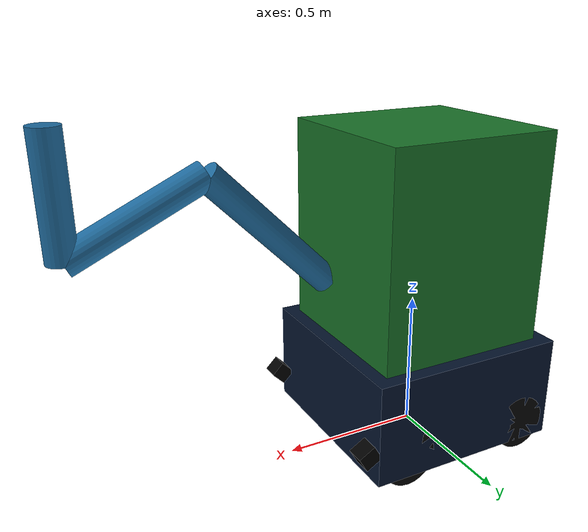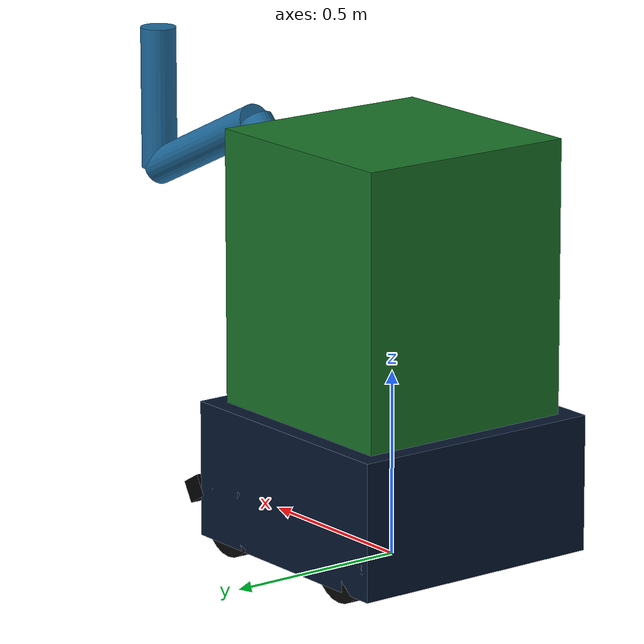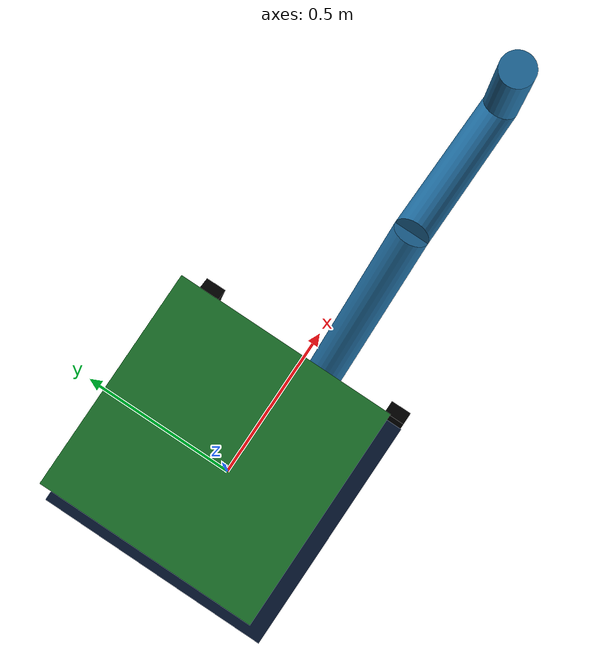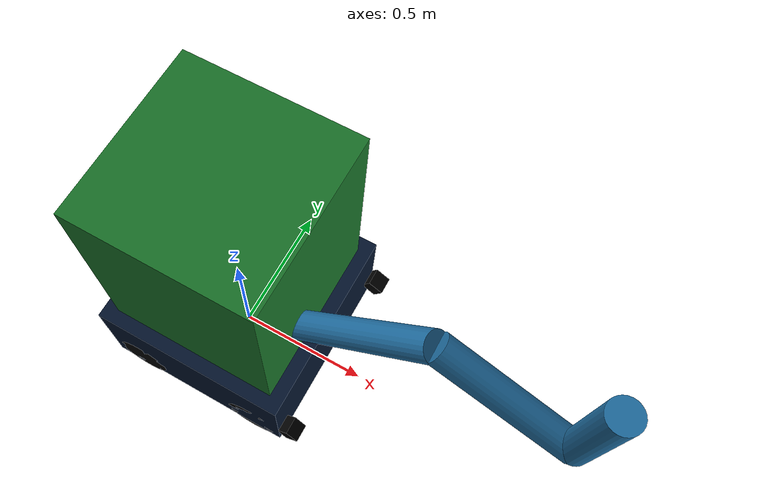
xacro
<?xml version="1.0"?>
<robot xmlns:xacro="http://www.ros.org/wiki/xacro" name="ai_ship_robot">
  <xacro:arg name="use_sim" default="true" />
  <xacro:arg name="lidar_pattern_file" default="lidar_pattern_dual_updown.urdf.xacro" />

  <xacro:property name="base_length" value="0.72" />
  <xacro:property name="base_width" value="0.72" />
  <xacro:property name="base_height" value="0.37" />
  <xacro:property name="ground_clearance" value="0.03" />
  <xacro:property name="wheel_radius" value="0.10" />
  <xacro:property name="wheel_width" value="0.08" />
  <xacro:property name="wheel_separation" value="${base_width - wheel_width}" />
  <xacro:property name="wheel_x_offset" value="${base_length / 2.0 - wheel_radius - 0.02}" />
  <xacro:property name="base_center_z" value="${ground_clearance - wheel_radius + base_height / 2.0}" />
  <xacro:property name="arm_robot_body_length" value="0.62" />
  <xacro:property name="arm_robot_body_width" value="0.62" />
  <xacro:property name="arm_robot_body_height" value="0.74" />
  <xacro:property name="arm_robot_arm_radius" value="0.05" />
  <xacro:property name="arm_robot_upper_arm_length" value="0.60" />
  <xacro:property name="arm_robot_forearm_length" value="0.50" />
  <xacro:property name="arm_robot_wrist_length" value="0.40" />
  <xacro:property name="arm_robot_first_arm_pitch" value="${45.0 * pi / 180.0}" />
  <xacro:property name="arm_robot_second_arm_pitch" value="${115.0 * pi / 180.0}" />

  <xacro:macro name="box_inertia" params="mass x y z">
    <inertial>
      <mass value="${mass}" />
      <origin xyz="0 0 0" rpy="0 0 0" />
      <inertia
        ixx="${mass * (y * y + z * z) / 12.0}"
        ixy="0"
        ixz="0"
        iyy="${mass * (x * x + z * z) / 12.0}"
        iyz="0"
        izz="${mass * (x * x + y * y) / 12.0}" />
    </inertial>
  </xacro:macro>

  <xacro:macro name="cylinder_inertia" params="mass radius length axis">
    <inertial>
      <mass value="${mass}" />
      <origin xyz="0 0 0" rpy="0 0 0" />
      <xacro:if value="${axis == 'y'}">
        <inertia
          ixx="${mass * (3.0 * radius * radius + length * length) / 12.0}"
          ixy="0"
          ixz="0"
          iyy="${mass * radius * radius / 2.0}"
          iyz="0"
          izz="${mass * (3.0 * radius * radius + length * length) / 12.0}" />
      </xacro:if>
      <xacro:unless value="${axis == 'y'}">
        <inertia
          ixx="${mass * (3.0 * radius * radius + length * length) / 12.0}"
          ixy="0"
          ixz="0"
          iyy="${mass * (3.0 * radius * radius + length * length) / 12.0}"
          iyz="0"
          izz="${mass * radius * radius / 2.0}" />
      </xacro:unless>
    </inertial>
  </xacro:macro>

  <xacro:macro name="drive_wheel" params="prefix x_position y_position">
    <link name="${prefix}_wheel_link">
      <visual>
        <origin xyz="0 0 0" rpy="${pi / 2.0} 0 0" />
        <geometry>
          <cylinder radius="${wheel_radius}" length="${wheel_width}" />
        </geometry>
        <material name="dark_gray">
          <color rgba="0.02 0.02 0.02 1.0" />
        </material>
      </visual>
      <collision>
        <origin xyz="0 0 0" rpy="${pi / 2.0} 0 0" />
        <geometry>
          <cylinder radius="${wheel_radius}" length="${wheel_width}" />
        </geometry>
      </collision>
      <xacro:cylinder_inertia mass="1.2" radius="${wheel_radius}" length="${wheel_width}" axis="y" />
    </link>

    <joint name="${prefix}_wheel_joint" type="continuous">
      <parent link="base_link" />
      <child link="${prefix}_wheel_link" />
      <origin xyz="${x_position} ${y_position} 0" rpy="0 0 0" />
      <axis xyz="0 1 0" />
    </joint>

    <gazebo reference="${prefix}_wheel_link">
      <material>Gazebo/Black</material>
      <mu1>1.0</mu1>
      <mu2>1.0</mu2>
    </gazebo>
  </xacro:macro>

  <xacro:macro name="fixed_arm_robot_fixture">
    <!-- LiDAR遮蔽を見やすくするため、上物本体は台車より一回り小さい箱で高さを強調する。 -->
    <link name="arm_robot_body_link">
      <visual>
        <origin xyz="0 0 0" rpy="0 0 0" />
        <geometry>
          <box size="${arm_robot_body_length} ${arm_robot_body_width} ${arm_robot_body_height}" />
        </geometry>
        <material name="arm_robot_green">
          <color rgba="0.10 0.45 0.16 1.0" />
        </material>
      </visual>
      <collision>
        <origin xyz="0 0 0" rpy="0 0 0" />
        <geometry>
          <box size="${arm_robot_body_length} ${arm_robot_body_width} ${arm_robot_body_height}" />
        </geometry>
      </collision>
      <xacro:box_inertia mass="18.0" x="${arm_robot_body_length}" y="${arm_robot_body_width}" z="${arm_robot_body_height}" />
    </link>

    <joint name="arm_robot_body_joint" type="fixed">
      <parent link="base_link" />
      <child link="arm_robot_body_link" />
      <origin xyz="0 0 ${base_center_z + base_height / 2.0 + arm_robot_body_height / 2.0}" rpy="0 0 0" />
    </joint>

    <!-- 根元・肘・手首の3節を前方上がりに固定し、LiDARから見える外形を優先して再現する。 -->
    <link name="arm_robot_upper_arm_link">
      <visual>
        <origin xyz="${arm_robot_upper_arm_length * cos(45.0 * pi / 180.0) / 2.0} 0 ${arm_robot_upper_arm_length * sin(45.0 * pi / 180.0) / 2.0}" rpy="0 ${arm_robot_first_arm_pitch} 0" />
        <geometry>
          <cylinder radius="${arm_robot_arm_radius}" length="${arm_robot_upper_arm_length}" />
        </geometry>
        <material name="arm_robot_blue">
          <color rgba="0.12 0.42 0.62 1.0" />
        </material>
      </visual>
      <collision>
        <origin xyz="${arm_robot_upper_arm_length * cos(45.0 * pi / 180.0) / 2.0} 0 ${arm_robot_upper_arm_length * sin(45.0 * pi / 180.0) / 2.0}" rpy="0 ${arm_robot_first_arm_pitch} 0" />
        <geometry>
          <cylinder radius="${arm_robot_arm_radius}" length="${arm_robot_upper_arm_length}" />
        </geometry>
      </collision>
      <xacro:cylinder_inertia mass="4.0" radius="${arm_robot_arm_radius}" length="${arm_robot_upper_arm_length}" axis="z" />
    </link>

    <joint name="arm_robot_shoulder_joint" type="fixed">
      <parent link="arm_robot_body_link" />
      <child link="arm_robot_upper_arm_link" />
      <origin xyz="${arm_robot_body_length / 2.0} -0.10 ${0.20 - arm_robot_body_height / 2.0}" rpy="0 0 0" />
    </joint>

    <link name="arm_robot_forearm_link">
      <visual>
        <origin xyz="${arm_robot_forearm_length * cos(-25.0 * pi / 180.0) / 2.0} 0 ${arm_robot_forearm_length * sin(-25.0 * pi / 180.0) / 2.0}" rpy="0 ${arm_robot_second_arm_pitch} 0" />
        <geometry>
          <cylinder radius="${arm_robot_arm_radius}" length="${arm_robot_forearm_length}" />
        </geometry>
        <material name="arm_robot_blue">
          <color rgba="0.12 0.42 0.62 1.0" />
        </material>
      </visual>
      <collision>
        <origin xyz="${arm_robot_forearm_length * cos(-25.0 * pi / 180.0) / 2.0} 0 ${arm_robot_forearm_length * sin(-25.0 * pi / 180.0) / 2.0}" rpy="0 ${arm_robot_second_arm_pitch} 0" />
        <geometry>
          <cylinder radius="${arm_robot_arm_radius}" length="${arm_robot_forearm_length}" />
        </geometry>
      </collision>
      <xacro:cylinder_inertia mass="3.0" radius="${arm_robot_arm_radius}" length="${arm_robot_forearm_length}" axis="z" />
    </link>

    <!-- 関節位置を各アーム先端へ一致させ、指定された内角と鉛直手首を維持する。 -->
    <joint name="arm_robot_elbow_joint" type="fixed">
      <parent link="arm_robot_upper_arm_link" />
      <child link="arm_robot_forearm_link" />
      <origin xyz="${arm_robot_upper_arm_length * cos(45.0 * pi / 180.0)} 0 ${arm_robot_upper_arm_length * sin(45.0 * pi / 180.0)}" rpy="0 0 0" />
    </joint>

    <link name="arm_robot_wrist_link">
      <visual>
        <origin xyz="0 0 ${arm_robot_wrist_length / 2.0}" rpy="0 0 0" />
        <geometry>
          <cylinder radius="${arm_robot_arm_radius}" length="${arm_robot_wrist_length}" />
        </geometry>
        <material name="arm_robot_blue">
          <color rgba="0.12 0.42 0.62 1.0" />
        </material>
      </visual>
      <collision>
        <origin xyz="0 0 ${arm_robot_wrist_length / 2.0}" rpy="0 0 0" />
        <geometry>
          <cylinder radius="${arm_robot_arm_radius}" length="${arm_robot_wrist_length}" />
        </geometry>
      </collision>
      <xacro:cylinder_inertia mass="2.0" radius="${arm_robot_arm_radius}" length="${arm_robot_wrist_length}" axis="z" />
    </link>

    <joint name="arm_robot_wrist_joint" type="fixed">
      <parent link="arm_robot_forearm_link" />
      <child link="arm_robot_wrist_link" />
      <origin xyz="${arm_robot_forearm_length * cos(-25.0 * pi / 180.0)} 0 ${arm_robot_forearm_length * sin(-25.0 * pi / 180.0)}" rpy="0 0 0" />
    </joint>
  </xacro:macro>

  <link name="base_footprint" />

  <joint name="base_footprint_joint" type="fixed">
    <parent link="base_footprint" />
    <child link="base_link" />
    <origin xyz="0 0 ${wheel_radius}" rpy="0 0 0" />
  </joint>

  <link name="base_link">
    <visual>
      <origin xyz="0 0 ${base_center_z}" rpy="0 0 0" />
      <geometry>
        <box size="${base_length} ${base_width} ${base_height}" />
      </geometry>
      <material name="navy_blue">
        <color rgba="0.02 0.08 0.18 1.0" />
      </material>
    </visual>
    <collision>
      <origin xyz="0 0 ${base_center_z}" rpy="0 0 0" />
      <geometry>
        <box size="${base_length} ${base_width} ${base_height}" />
      </geometry>
    </collision>
    <xacro:box_inertia mass="28.0" x="${base_length}" y="${base_width}" z="${base_height}" />
  </link>

  <xacro:drive_wheel prefix="left_front" x_position="${wheel_x_offset}" y_position="${wheel_separation / 2.0}" />
  <xacro:drive_wheel prefix="left_rear" x_position="${-wheel_x_offset}" y_position="${wheel_separation / 2.0}" />
  <xacro:drive_wheel prefix="right_front" x_position="${wheel_x_offset}" y_position="${-wheel_separation / 2.0}" />
  <xacro:drive_wheel prefix="right_rear" x_position="${-wheel_x_offset}" y_position="${-wheel_separation / 2.0}" />
  <xacro:fixed_arm_robot_fixture />

  <!-- 起動時に指定された配置ファイルを読み込み、URDF編集なしでLiDARパターンを切り替える。 -->
  <xacro:include filename="lidar/patterns/$(arg lidar_pattern_file)" />

  <link name="imu_link">
    <visual>
      <origin xyz="0 0 0" rpy="0 0 0" />
      <geometry>
        <box size="0.08 0.06 0.025" />
      </geometry>
      <material name="imu_green">
        <color rgba="0.0 0.35 0.18 1.0" />
      </material>
    </visual>
    <collision>
      <origin xyz="0 0 0" rpy="0 0 0" />
      <geometry>
        <box size="0.08 0.06 0.025" />
      </geometry>
    </collision>
    <xacro:box_inertia mass="0.1" x="0.08" y="0.06" z="0.025" />
  </link>

  <joint name="imu_joint" type="fixed">
    <parent link="base_link" />
    <child link="imu_link" />
    <origin xyz="0 0 ${base_center_z + base_height / 2.0 - 0.02}" rpy="0 0 0" />
  </joint>

  <gazebo reference="base_link">
    <material>Gazebo/Blue</material>
  </gazebo>
  <xacro:if value="$(arg use_sim)">
    <!-- Gazebo Classic上で平面移動とodom/TFを再現する。 -->
    <gazebo>
      <plugin filename="libgazebo_ros_planar_move.so" name="gazebo_ros_planar_move">
        <ros>
          <namespace>/</namespace>
        </ros>
        <command_topic>cmd_vel</command_topic>
        <odometry_topic>odom</odometry_topic>
        <odometry_frame>odom</odometry_frame>
        <robot_base_frame>base_footprint</robot_base_frame>
        <publish_odom>true</publish_odom>
        <publish_odom_tf>true</publish_odom_tf>
      </plugin>
    </gazebo>

    <!-- IMUはClassicのgazebo_ros sensor plugin経由でROS topicへ流す。 -->
    <gazebo reference="imu_link">
      <sensor name="imu" type="imu">
        <always_on>true</always_on>
        <update_rate>100</update_rate>
        <plugin filename="libgazebo_ros_imu_sensor.so" name="gazebo_ros_imu_sensor">
          <ros>
            <namespace>/</namespace>
            <remapping>~/out:=imu/data</remapping>
          </ros>
          <frame_name>imu_link</frame_name>
        </plugin>
      </sensor>
    </gazebo>
  </xacro:if>
</robot>

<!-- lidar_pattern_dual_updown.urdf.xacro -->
<robot xmlns:xacro="http://www.ros.org/wiki/xacro" name="lidar_pattern_03_dual_front_corners_down_yaw38">
  <xacro:include filename="../models/mid360_lidar.urdf.xacro" />

  <!-- Pattern 03: Pattern 01 with each LiDAR yawed 38 degrees outward. -->
  <xacro:property name="deg_to_rad" value="${pi / 180.0}" />
  <xacro:property name="lidar_front_x" value="${base_length / 2.0 + mid360_height / 2.0}" />
  <xacro:property name="lidar_left_y" value="${base_width / 2.0 - mid360_width / 2.0}" />
  <xacro:property name="lidar_right_y" value="${-lidar_left_y}" />
  <xacro:property name="lidar_ground_height" value="0.150" />
  <xacro:property name="lidar_z" value="${lidar_ground_height - wheel_radius}" />
  <xacro:property name="lidar_roll" value="0.0" />
  <xacro:property name="lidar_yaw" value="0.0" />
  <xacro:property name="left_lidar_pitch" value="${120.0 * deg_to_rad}" />
  <xacro:property name="right_lidar_pitch" value="${45.0 * deg_to_rad}" />

  <xacro:mid360_lidar
    prefix="left"
    x="${lidar_front_x}"
    y="${lidar_left_y}"
    z="${lidar_z}"
    roll="${lidar_roll}"
    pitch="${left_lidar_pitch}"
    yaw="${lidar_yaw}"
    enable_imu="true"
    imu_topic="/left_lidar/imu" />

  <xacro:mid360_lidar
    prefix="right"
    x="${lidar_front_x}"
    y="${lidar_right_y}"
    z="${lidar_z}"
    roll="${lidar_roll}"
    pitch="${right_lidar_pitch}"
    yaw="${lidar_yaw}" />
</robot>

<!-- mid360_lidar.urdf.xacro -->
<robot xmlns:xacro="http://www.ros.org/wiki/xacro" name="mid360_lidar">
  <xacro:arg name="half_lidar_resolution" default="false" />
  <xacro:arg name="quarter_lidar_resolution" default="false" />

  <xacro:property name="mid360_depth" value="0.060" />
  <xacro:property name="mid360_width" value="0.065" />
  <xacro:property name="mid360_height" value="0.065" />
  <xacro:property name="mid360_samples" value="40000" />
  <xacro:property name="mid360_downsample" value="1" />
  <xacro:property name="mid360_half_downsample" value="2" />
  <xacro:property name="mid360_quarter_downsample" value="4" />

  <xacro:macro name="mid360_gazebo_sensor" params="prefix">
    <gazebo reference="${prefix}_lidar_link">
      <sensor name="${prefix}_lidar_link" type="ray">
        <always_on>true</always_on>
        <visualize>false</visualize>
        <update_rate>10</update_rate>
        <!-- Livox pluginの要求に合わせ、可視化用のray設定とCSV走査設定を同居させる。 -->
        <plugin name="${prefix}_livox_plugin" filename="libros2_livox.so">
          <ray>
            <scan>
              <horizontal>
                <samples>100</samples>
                <resolution>1</resolution>
                <min_angle>0</min_angle>
                <max_angle>${2.0 * pi}</max_angle>
              </horizontal>
              <vertical>
                <samples>360</samples>
                <resolution>1</resolution>
                <min_angle>${-7.22 * pi / 180.0}</min_angle>
                <max_angle>${55.22 * pi / 180.0}</max_angle>
              </vertical>
            </scan>
            <range>
              <min>0.10</min>
              <max>200.0</max>
              <resolution>0.002</resolution>
            </range>
            <noise>
              <type>gaussian</type>
              <mean>0.0</mean>
              <stddev>0.01</stddev>
            </noise>
          </ray>
          <visualize>false</visualize>
          <samples>${mid360_samples}</samples>
          <!-- downsample値だけでLivox pluginの負荷を切り替え、topic構成は維持する。 -->
          <xacro:if value="$(arg quarter_lidar_resolution)">
            <downsample>${mid360_quarter_downsample}</downsample>
          </xacro:if>
          <xacro:unless value="$(arg half_lidar_resolution)">
            <xacro:unless value="$(arg quarter_lidar_resolution)">
              <downsample>${mid360_downsample}</downsample>
            </xacro:unless>
          </xacro:unless>
          <xacro:if value="$(arg half_lidar_resolution)">
            <downsample>${mid360_half_downsample}</downsample>
          </xacro:if>
          <csv_file_name>$(find ros2_livox_simulation)/scan_mode/mid360.csv</csv_file_name>
          <topic>${prefix}_livox</topic>
          <custom_topic>/${prefix}_lidar/custom</custom_topic>
          <pointcloud2_topic>/${prefix}_lidar/points</pointcloud2_topic>
        </plugin>
      </sensor>
    </gazebo>
  </xacro:macro>

  <xacro:macro name="mid360_lidar" params="prefix x y z roll pitch yaw">
    <link name="${prefix}_lidar_link">
      <visual>
        <origin xyz="0 0 0" rpy="0 0 0" />
        <geometry>
          <box size="${mid360_depth} ${mid360_width} ${mid360_height}" />
        </geometry>
        <material name="sensor_black">
          <color rgba="0.0 0.0 0.0 1.0" />
        </material>
      </visual>
      <collision>
        <origin xyz="0 0 0" rpy="0 0 0" />
        <geometry>
          <box size="${mid360_depth} ${mid360_width} ${mid360_height}" />
        </geometry>
      </collision>
      <xacro:box_inertia mass="0.265" x="${mid360_depth}" y="${mid360_width}" z="${mid360_height}" />
    </link>

    <joint name="${prefix}_lidar_joint" type="fixed">
      <parent link="base_link" />
      <child link="${prefix}_lidar_link" />
      <origin xyz="${x} ${y} ${z}" rpy="${roll} ${pitch} ${yaw}" />
    </joint>

    <xacro:if value="$(arg use_sim)">
      <xacro:mid360_gazebo_sensor prefix="${prefix}" />
    </xacro:if>
  </xacro:macro>
</robot>
